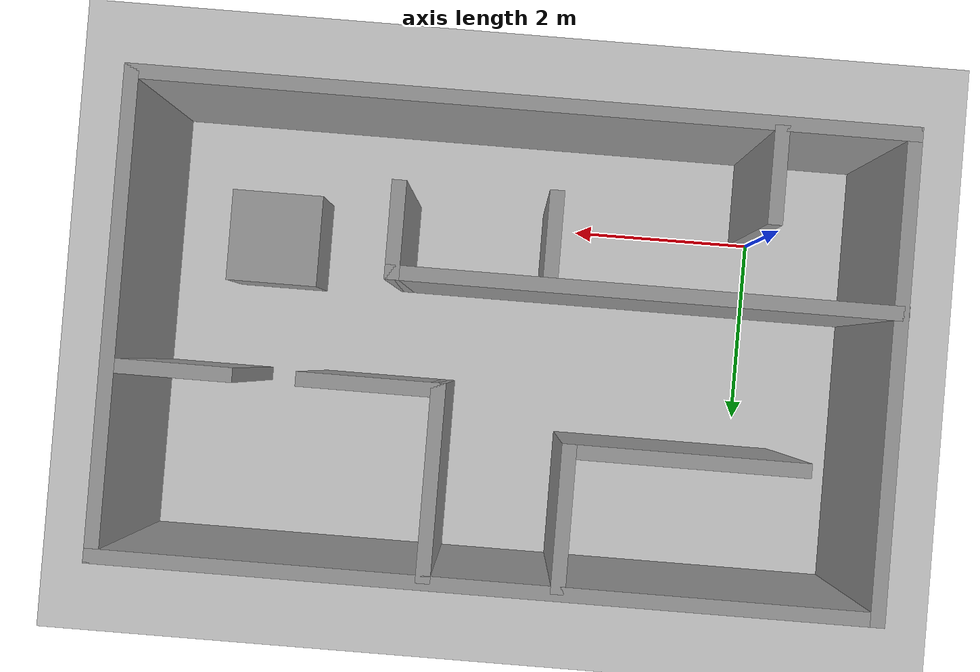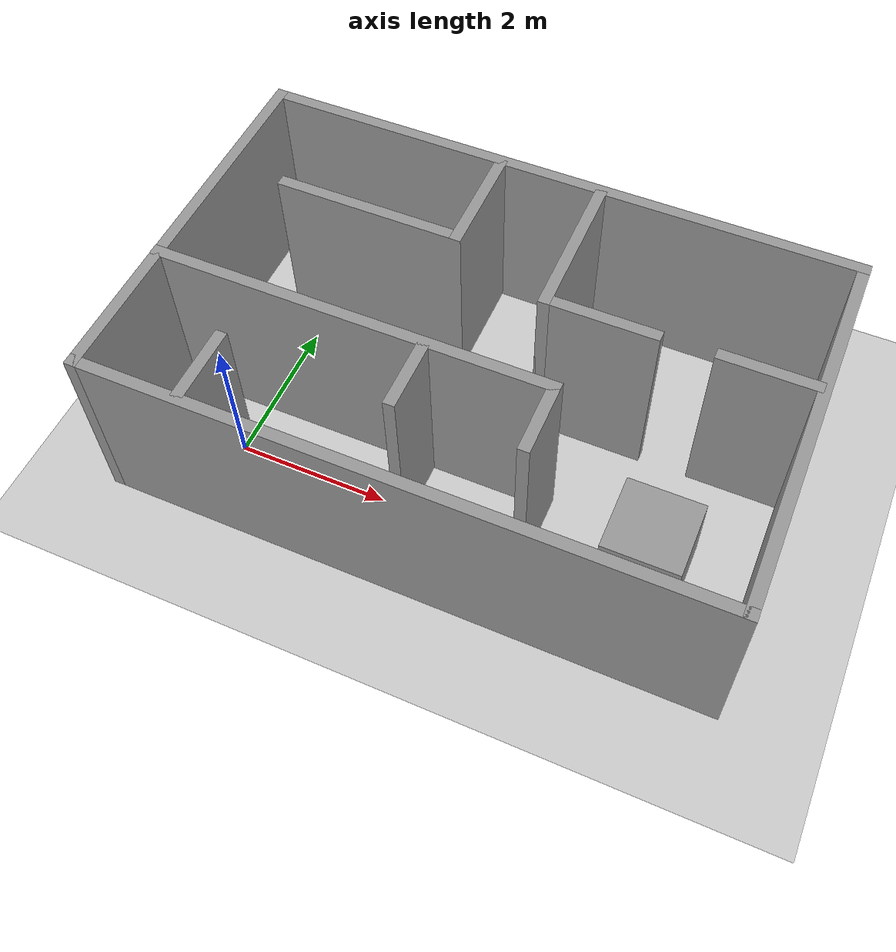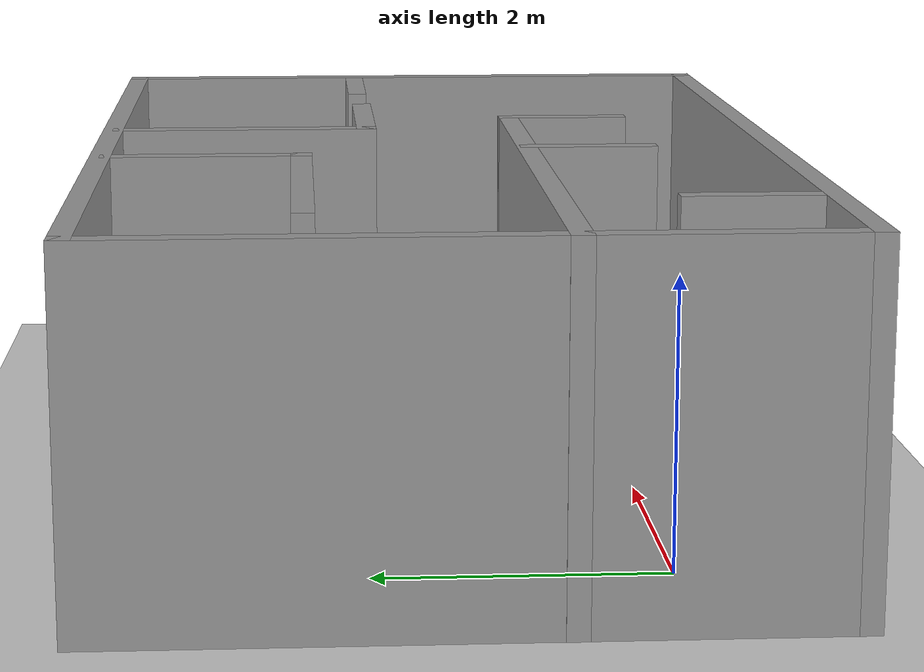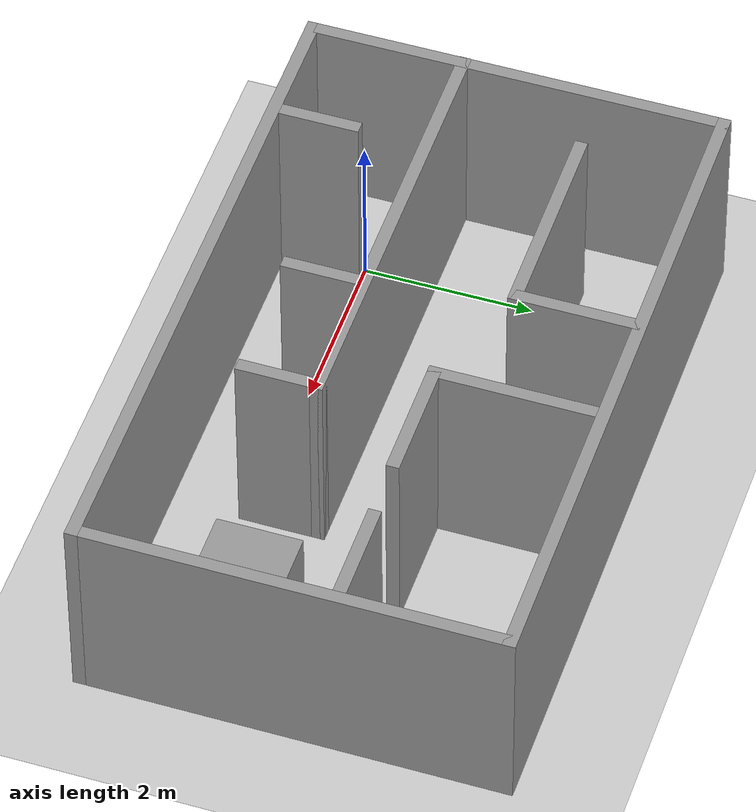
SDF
<sdf version="1.7">
 <world name="default">
  <light name="sun" type="directional">
   <pose>0 0 10 0 -0 0</pose>
   <diffuse>0.8 0.8 0.8 1</diffuse>
   <specular>0.2 0.2 0.2 1</specular>
   <attenuation>
    <range>1000</range>
    <constant>0.9</constant>
    <linear>0.01</linear>
    <quadratic>0.001</quadratic>
   </attenuation>
   <direction>-0.5 0.1 -0.9</direction>
   <spot><inner_angle>0</inner_angle><outer_angle>0</outer_angle><falloff>0</falloff></spot>
  </light>
  <model name="ground_plane">
   <static>1</static>
   <link name="link">
    <collision name="collision">
     <geometry><plane><normal>0 0 1</normal><size>100 100</size></plane></geometry>
     <surface><friction><ode><mu>100</mu><mu2>50</mu2></ode></friction></surface>
    </collision>
    <visual name="visual">
     <cast_shadows>0</cast_shadows>
     <geometry><plane><normal>0 0 1</normal><size>100 100</size></plane></geometry>
     <material>
      <script><uri>file://media/materials/scripts/gazebo.material</uri><name>Gazebo/Grey</name></script>
     </material>
    </visual>
   </link>
  </model>
  <gravity>0 0 -9.8</gravity>
  <magnetic_field>6e-06 2.3e-05 -4.2e-05</magnetic_field>
  <atmosphere type="adiabatic"/>
  <physics type="ode">
   <max_step_size>0.001</max_step_size>
   <real_time_factor>1</real_time_factor>
   <real_time_update_rate>1000</real_time_update_rate>
  </physics>
  <scene><ambient>0.4 0.4 0.4 1</ambient><background>0.7 0.7 0.7 1</background><shadows>1</shadows></scene>
  <audio><device>default</device></audio>
  <spherical_coordinates>
   <surface_model>EARTH_WGS84</surface_model>
   <latitude_deg>0</latitude_deg>
   <longitude_deg>0</longitude_deg>
   <elevation>0</elevation>
   <heading_deg>0</heading_deg>
  </spherical_coordinates>
  <model name="room">
   <pose>2.7233 2.22685 0 0 -0 0</pose>
   <link name="Wall_0">
    <collision name="Wall_0_Collision">
     <geometry><box><size>8 0.15 2.5</size></box></geometry>
     <pose>0 0 1.25 0 -0 0</pose>
    </collision>
    <visual name="Wall_0_Visual">
     <pose>0 0 1.25 0 -0 0</pose>
     <geometry><box><size>8 0.15 2.5</size></box></geometry>
     <material>
      <script><uri>file://media/materials/scripts/gazebo.material</uri><name>Gazebo/Grey</name></script>
      <ambient>1 1 1 1</ambient>
     </material>
     <meta><layer>0</layer></meta>
    </visual>
    <pose>0.002259 1.60312 0 0 -0 0</pose>
   </link>
   <link name="Wall_10">
    <collision name="Wall_10_Collision">
     <geometry><box><size>5.25 0.15 2.5</size></box></geometry>
     <pose>0 0 1.25 0 -0 0</pose>
    </collision>
    <visual name="Wall_10_Visual">
     <pose>0 0 1.25 0 -0 0</pose>
     <geometry><box><size>5.25 0.15 2.5</size></box></geometry>
     <material>
      <script><uri>file://media/materials/scripts/gazebo.material</uri><name>Gazebo/Grey</name></script>
      <ambient>1 1 1 1</ambient>
     </material>
     <meta><layer>0</layer></meta>
    </visual>
    <pose>-1.37726 -1.45219 0 0 -0 0</pose>
   </link>
   <link name="Wall_11">
    <collision name="Wall_11_Collision">
     <geometry><box><size>1 0.15 2.5</size></box></geometry>
     <pose>0 0 1.25 0 -0 0</pose>
    </collision>
    <visual name="Wall_11_Visual">
     <pose>0 0 1.25 0 -0 0</pose>
     <geometry><box><size>1 0.15 2.5</size></box></geometry>
     <material>
      <script><uri>file://media/materials/scripts/gazebo.material</uri><name>Gazebo/Grey</name></script>
      <ambient>1 1 1 1</ambient>
     </material>
     <meta><layer>0</layer></meta>
    </visual>
    <pose>1.17274 -1.87719 0 0 -0 -1.5708</pose>
   </link>
   <link name="Wall_13">
    <collision name="Wall_13_Collision">
     <geometry><box><size>1 0.15 2.5</size></box></geometry>
     <pose>0 0 1.25 0 -0 0</pose>
    </collision>
    <visual name="Wall_13_Visual">
     <pose>0 0 1.25 0 -0 0</pose>
     <geometry><box><size>1 0.15 2.5</size></box></geometry>
     <material>
      <script><uri>file://media/materials/scripts/gazebo.material</uri><name>Gazebo/Grey</name></script>
      <ambient>1 1 1 1</ambient>
     </material>
     <meta><layer>0</layer></meta>
    </visual>
    <pose>-2.59594 -2.73161 0 0 -0 1.5708</pose>
   </link>
   <link name="Wall_15">
    <collision name="Wall_15_Collision">
     <geometry><box><size>1 0.15 2.5</size></box></geometry>
     <pose>0 0 1.25 0 -0 0</pose>
    </collision>
    <visual name="Wall_15_Visual">
     <pose>0 0 1.25 0 -0 0</pose>
     <geometry><box><size>1 0.15 2.5</size></box></geometry>
     <material>
      <script><uri>file://media/materials/scripts/gazebo.material</uri><name>Gazebo/Grey</name></script>
      <ambient>1 1 1 1</ambient>
     </material>
     <meta><layer>0</layer></meta>
    </visual>
    <pose>-0.408176 -1.90262 0 0 -0 -1.5708</pose>
   </link>
   <link name="Wall_17">
    <collision name="Wall_17_Collision">
     <geometry><box><size>2 0.15 2.5</size></box></geometry>
     <pose>0 0 1.25 0 -0 0</pose>
    </collision>
    <visual name="Wall_17_Visual">
     <pose>0 0 1.25 0 -0 0</pose>
     <geometry><box><size>2 0.15 2.5</size></box></geometry>
     <material>
      <script><uri>file://media/materials/scripts/gazebo.material</uri><name>Gazebo/Grey</name></script>
      <ambient>1 1 1 1</ambient>
     </material>
     <meta><layer>0</layer></meta>
    </visual>
    <pose>0.61787 0.607676 0 0 -0 -1.5708</pose>
   </link>
   <link name="Wall_18">
    <collision name="Wall_18_Collision">
     <geometry><box><size>1.5 0.15 2.5</size></box></geometry>
     <pose>0 0 1.25 0 -0 0</pose>
    </collision>
    <visual name="Wall_18_Visual">
     <pose>0 0 1.25 0 -0 0</pose>
     <geometry><box><size>1.5 0.15 2.5</size></box></geometry>
     <material>
      <script><uri>file://media/materials/scripts/gazebo.material</uri><name>Gazebo/Grey</name></script>
      <ambient>1 1 1 1</ambient>
     </material>
     <meta><layer>0</layer></meta>
    </visual>
    <pose>1.29287 -0.317324 0 0 -0 0</pose>
   </link>
   <link name="Wall_3">
    <collision name="Wall_3_Collision">
     <geometry><box><size>5 0.15 2.5</size></box></geometry>
     <pose>0 0 1.25 0 -0 0</pose>
    </collision>
    <visual name="Wall_3_Visual">
     <pose>0 0 1.25 0 -0 0</pose>
     <geometry><box><size>5 0.15 2.5</size></box></geometry>
     <material>
      <script><uri>file://media/materials/scripts/gazebo.material</uri><name>Gazebo/Grey</name></script>
      <ambient>1 1 1 1</ambient>
     </material>
     <meta><layer>0</layer></meta>
    </visual>
    <pose>3.92726 -0.821885 0 0 -0 -1.5708</pose>
   </link>
   <link name="Wall_30">
    <collision name="Wall_30_Collision">
     <geometry><box><size>1.25 0.15 2.5</size></box></geometry>
     <pose>0 0 1.25 0 -0 0</pose>
    </collision>
    <visual name="Wall_30_Visual">
     <pose>0 0 1.25 0 -0 0</pose>
     <geometry><box><size>1.25 0.15 2.5</size></box></geometry>
     <material>
      <script><uri>file://media/materials/scripts/gazebo.material</uri><name>Gazebo/Grey</name></script>
      <ambient>1 1 1 1</ambient>
     </material>
     <meta><layer>0</layer></meta>
    </visual>
    <pose>3.29873 -0.3012 0 0 -0 0</pose>
   </link>
   <link name="Wall_4">
    <collision name="Wall_4_Collision">
     <geometry><box><size>8 0.15 2.5</size></box></geometry>
     <pose>0 0 1.25 0 -0 0</pose>
    </collision>
    <visual name="Wall_4_Visual">
     <pose>0 0 1.25 0 -0 0</pose>
     <geometry><box><size>8 0.15 2.5</size></box></geometry>
     <material>
      <script><uri>file://media/materials/scripts/gazebo.material</uri><name>Gazebo/Grey</name></script>
      <ambient>1 1 1 1</ambient>
     </material>
     <meta><layer>0</layer></meta>
    </visual>
    <pose>0.002259 -3.24688 0 0 -0 3.14159</pose>
   </link>
   <link name="Wall_5">
    <collision name="Wall_5_Collision">
     <geometry><box><size>5 0.15 2.5</size></box></geometry>
     <pose>0 0 1.25 0 -0 0</pose>
    </collision>
    <visual name="Wall_5_Visual">
     <pose>0 0 1.25 0 -0 0</pose>
     <geometry><box><size>5 0.15 2.5</size></box></geometry>
     <material>
      <script><uri>file://media/materials/scripts/gazebo.material</uri><name>Gazebo/Grey</name></script>
      <ambient>1 1 1 1</ambient>
     </material>
     <meta><layer>0</layer></meta>
    </visual>
    <pose>-3.92274 -0.821885 0 0 -0 1.5708</pose>
   </link>
   <link name="Wall_7">
    <collision name="Wall_7_Collision">
     <geometry><box><size>1.5 0.15 2.5</size></box></geometry>
     <pose>0 0 1.25 0 -0 0</pose>
    </collision>
    <visual name="Wall_7_Visual">
     <pose>0 0 1.25 0 -0 0</pose>
     <geometry><box><size>1.5 0.15 2.5</size></box></geometry>
     <material>
      <script><uri>file://media/materials/scripts/gazebo.material</uri><name>Gazebo/Grey</name></script>
      <ambient>1 1 1 1</ambient>
     </material>
     <meta><layer>0</layer></meta>
    </visual>
    <pose>-0.730406 0.857676 0 0 -0 -1.5708</pose>
   </link>
   <link name="Wall_8">
    <collision name="Wall_8_Collision">
     <geometry><box><size>2.5 0.15 2.5</size></box></geometry>
     <pose>0 0 1.25 0 -0 0</pose>
    </collision>
    <visual name="Wall_8_Visual">
     <pose>0 0 1.25 0 -0 0</pose>
     <geometry><box><size>2.5 0.15 2.5</size></box></geometry>
     <material>
      <script><uri>file://media/materials/scripts/gazebo.material</uri><name>Gazebo/Grey</name></script>
      <ambient>1 1 1 1</ambient>
     </material>
     <meta><layer>0</layer></meta>
    </visual>
    <pose>-1.90541 0.182676 0 0 -0 3.14159</pose>
   </link>
   <static>1</static>
  </model>
  <model name="unit_box">
   <pose>5.34231 0.416133 0.5 0 -0 0</pose>
   <link name="link">
    <inertial>
     <mass>1</mass>
     <inertia>
      <ixx>0.166667</ixx>
      <ixy>0</ixy>
      <ixz>0</ixz>
      <iyy>0.166667</iyy>
      <iyz>0</iyz>
      <izz>0.166667</izz>
     </inertia>
    </inertial>
    <collision name="collision"><geometry><box><size>1 1 1</size></box></geometry></collision>
    <visual name="visual">
     <geometry><box><size>1 1 1</size></box></geometry>
     <material>
      <script><name>Gazebo/Grey</name><uri>file://media/materials/scripts/gazebo.material</uri></script>
     </material>
    </visual>
   </link>
  </model>
 </world>
</sdf>
